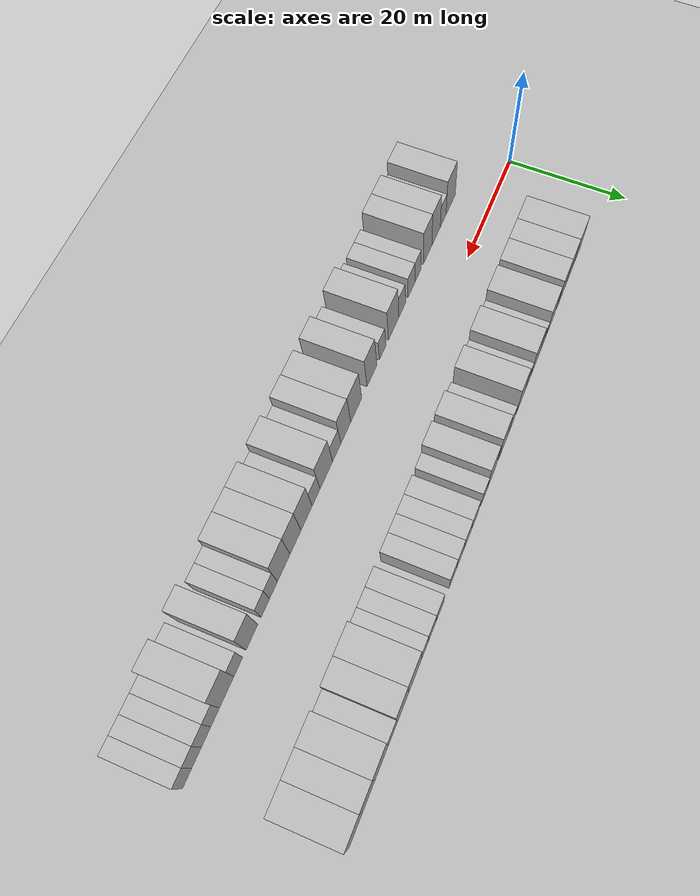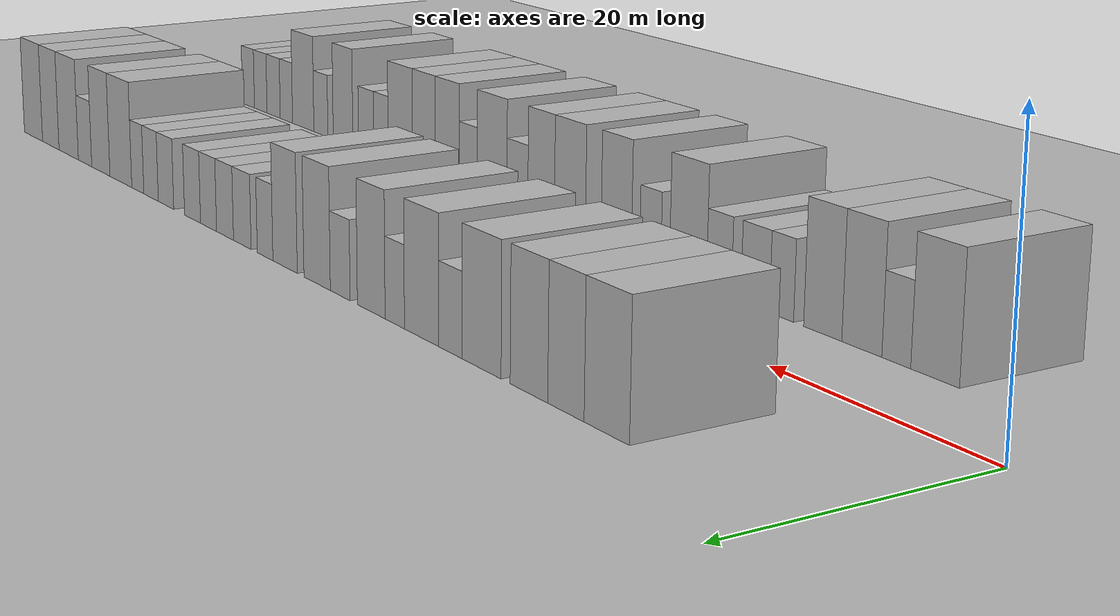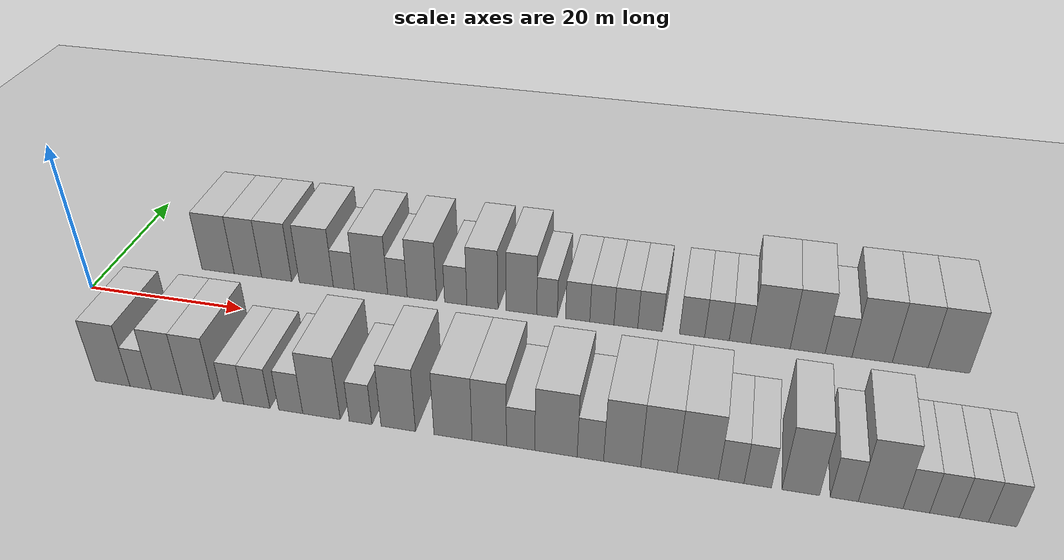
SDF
<sdf version="1.6">
 <world name="default">
  <include><name>ground_plane_1</name><uri>model://HANNAS_ground_plane</uri></include>
  <include>
   <name>ground_plane_2</name>
   <uri>model://HANNAS_ground_plane</uri>
   <pose>100 0 0  0 0 0</pose>
  </include>
  <model name="building_1">
   <static>1</static>
   <pose>14.1911 11.0000 0 0.000000 0.000000 1.570796</pose>
   <link name="link">
    <pose>0 0 4.50 0 0 0</pose>
    <collision name="collision"><geometry><box><size>10.0000 4.3821 9.0000</size></box></geometry></collision>
    <visual name="visual">
     <cast_shadows>0</cast_shadows>
     <geometry><box><size>10.0000 4.3821 9.0000</size></box></geometry>
     <material>
      <script>
       <uri>model://HANNAS_wall/materials/scripts</uri>
       <uri>model://HANNAS_wall/materials/textures</uri>
       <name>vrc/HANNAS_wall</name>
      </script>
     </material>
    </visual>
   </link>
  </model>
  <model name="building_2">
   <static>1</static>
   <pose>18.2319 11.0000 0 0.000000 0.000000 1.570796</pose>
   <link name="link">
    <pose>0 0 4.50 0 0 0</pose>
    <collision name="collision"><geometry><box><size>10.0000 3.6997 9.0000</size></box></geometry></collision>
    <visual name="visual">
     <cast_shadows>0</cast_shadows>
     <geometry><box><size>10.0000 3.6997 9.0000</size></box></geometry>
     <material>
      <script>
       <uri>model://HANNAS_wall/materials/scripts</uri>
       <uri>model://HANNAS_wall/materials/textures</uri>
       <name>vrc/HANNAS_wall</name>
      </script>
     </material>
    </visual>
   </link>
  </model>
  <model name="building_3">
   <static>1</static>
   <pose>22.0924 11.0000 0 0.000000 0.000000 1.570796</pose>
   <link name="link">
    <pose>0 0 4.50 0 0 0</pose>
    <collision name="collision"><geometry><box><size>10.0000 4.0213 9.0000</size></box></geometry></collision>
    <visual name="visual">
     <cast_shadows>0</cast_shadows>
     <geometry><box><size>10.0000 4.0213 9.0000</size></box></geometry>
     <material>
      <script>
       <uri>model://HANNAS_wall/materials/scripts</uri>
       <uri>model://HANNAS_wall/materials/textures</uri>
       <name>vrc/HANNAS_wall</name>
      </script>
     </material>
    </visual>
   </link>
  </model>
  <model name="building_4">
   <static>1</static>
   <pose>27.3407 11.0000 0 0.000000 0.000000 1.570796</pose>
   <link name="link">
    <pose>0 0 4.50 0 0 0</pose>
    <collision name="collision"><geometry><box><size>10.0000 4.4752 9.0000</size></box></geometry></collision>
    <visual name="visual">
     <cast_shadows>0</cast_shadows>
     <geometry><box><size>10.0000 4.4752 9.0000</size></box></geometry>
     <material>
      <script>
       <uri>model://HANNAS_wall/materials/scripts</uri>
       <uri>model://HANNAS_wall/materials/textures</uri>
       <name>vrc/HANNAS_wall</name>
      </script>
     </material>
    </visual>
   </link>
  </model>
  <model name="building_5">
   <static>1</static>
   <pose>30.9566 11.0000 0 0.000000 0.000000 1.570796</pose>
   <link name="link">
    <pose>0 0 3.00 0 0 0</pose>
    <collision name="collision"><geometry><box><size>10.0000 2.7566 6.0000</size></box></geometry></collision>
    <visual name="visual">
     <cast_shadows>0</cast_shadows>
     <geometry><box><size>10.0000 2.7566 6.0000</size></box></geometry>
     <material>
      <script>
       <uri>model://HANNAS_wall/materials/scripts</uri>
       <uri>model://HANNAS_wall/materials/textures</uri>
       <name>vrc/HANNAS_wall</name>
      </script>
     </material>
    </visual>
   </link>
  </model>
  <model name="building_6">
   <static>1</static>
   <pose>34.4782 11.0000 0 0.000000 0.000000 1.570796</pose>
   <link name="link">
    <pose>0 0 4.50 0 0 0</pose>
    <collision name="collision"><geometry><box><size>10.0000 4.2865 9.0000</size></box></geometry></collision>
    <visual name="visual">
     <cast_shadows>0</cast_shadows>
     <geometry><box><size>10.0000 4.2865 9.0000</size></box></geometry>
     <material>
      <script>
       <uri>model://HANNAS_wall/materials/scripts</uri>
       <uri>model://HANNAS_wall/materials/textures</uri>
       <name>vrc/HANNAS_wall</name>
      </script>
     </material>
    </visual>
   </link>
  </model>
  <model name="building_7">
   <static>1</static>
   <pose>37.8743 11.0000 0 0.000000 0.000000 1.570796</pose>
   <link name="link">
    <pose>0 0 3.00 0 0 0</pose>
    <collision name="collision"><geometry><box><size>10.0000 2.5058 6.0000</size></box></geometry></collision>
    <visual name="visual">
     <cast_shadows>0</cast_shadows>
     <geometry><box><size>10.0000 2.5058 6.0000</size></box></geometry>
     <material>
      <script>
       <uri>model://HANNAS_wall/materials/scripts</uri>
       <uri>model://HANNAS_wall/materials/textures</uri>
       <name>vrc/HANNAS_wall</name>
      </script>
     </material>
    </visual>
   </link>
  </model>
  <model name="building_8">
   <static>1</static>
   <pose>40.9944 11.0000 0 0.000000 0.000000 1.570796</pose>
   <link name="link">
    <pose>0 0 4.50 0 0 0</pose>
    <collision name="collision"><geometry><box><size>10.0000 3.7344 9.0000</size></box></geometry></collision>
    <visual name="visual">
     <cast_shadows>0</cast_shadows>
     <geometry><box><size>10.0000 3.7344 9.0000</size></box></geometry>
     <material>
      <script>
       <uri>model://HANNAS_wall/materials/scripts</uri>
       <uri>model://HANNAS_wall/materials/textures</uri>
       <name>vrc/HANNAS_wall</name>
      </script>
     </material>
    </visual>
   </link>
  </model>
  <model name="building_9">
   <static>1</static>
   <pose>45.2568 11.0000 0 0.000000 0.000000 1.570796</pose>
   <link name="link">
    <pose>0 0 3.00 0 0 0</pose>
    <collision name="collision"><geometry><box><size>10.0000 2.7903 6.0000</size></box></geometry></collision>
    <visual name="visual">
     <cast_shadows>0</cast_shadows>
     <geometry><box><size>10.0000 2.7903 6.0000</size></box></geometry>
     <material>
      <script>
       <uri>model://HANNAS_wall/materials/scripts</uri>
       <uri>model://HANNAS_wall/materials/textures</uri>
       <name>vrc/HANNAS_wall</name>
      </script>
     </material>
    </visual>
   </link>
  </model>
  <model name="building_10">
   <static>1</static>
   <pose>48.5802 11.0000 0 0.000000 0.000000 1.570796</pose>
   <link name="link">
    <pose>0 0 4.50 0 0 0</pose>
    <collision name="collision"><geometry><box><size>10.0000 3.8563 9.0000</size></box></geometry></collision>
    <visual name="visual">
     <cast_shadows>0</cast_shadows>
     <geometry><box><size>10.0000 3.8563 9.0000</size></box></geometry>
     <material>
      <script>
       <uri>model://HANNAS_wall/materials/scripts</uri>
       <uri>model://HANNAS_wall/materials/textures</uri>
       <name>vrc/HANNAS_wall</name>
      </script>
     </material>
    </visual>
   </link>
  </model>
  <model name="building_11">
   <static>1</static>
   <pose>53.3890 11.0000 0 0.000000 0.000000 1.570796</pose>
   <link name="link">
    <pose>0 0 4.50 0 0 0</pose>
    <collision name="collision"><geometry><box><size>10.0000 3.7614 9.0000</size></box></geometry></collision>
    <visual name="visual">
     <cast_shadows>0</cast_shadows>
     <geometry><box><size>10.0000 3.7614 9.0000</size></box></geometry>
     <material>
      <script>
       <uri>model://HANNAS_wall/materials/scripts</uri>
       <uri>model://HANNAS_wall/materials/textures</uri>
       <name>vrc/HANNAS_wall</name>
      </script>
     </material>
    </visual>
   </link>
  </model>
  <model name="building_12">
   <static>1</static>
   <pose>56.5151 11.0000 0 0.000000 0.000000 1.570796</pose>
   <link name="link">
    <pose>0 0 3.00 0 0 0</pose>
    <collision name="collision"><geometry><box><size>10.0000 2.4908 6.0000</size></box></geometry></collision>
    <visual name="visual">
     <cast_shadows>0</cast_shadows>
     <geometry><box><size>10.0000 2.4908 6.0000</size></box></geometry>
     <material>
      <script>
       <uri>model://HANNAS_wall/materials/scripts</uri>
       <uri>model://HANNAS_wall/materials/textures</uri>
       <name>vrc/HANNAS_wall</name>
      </script>
     </material>
    </visual>
   </link>
  </model>
  <model name="building_13">
   <static>1</static>
   <pose>60.2191 11.0000 0 0.000000 0.000000 1.570796</pose>
   <link name="link">
    <pose>0 0 3.00 0 0 0</pose>
    <collision name="collision"><geometry><box><size>10.0000 2.9172 6.0000</size></box></geometry></collision>
    <visual name="visual">
     <cast_shadows>0</cast_shadows>
     <geometry><box><size>10.0000 2.9172 6.0000</size></box></geometry>
     <material>
      <script>
       <uri>model://HANNAS_wall/materials/scripts</uri>
       <uri>model://HANNAS_wall/materials/textures</uri>
       <name>vrc/HANNAS_wall</name>
      </script>
     </material>
    </visual>
   </link>
  </model>
  <model name="building_14">
   <static>1</static>
   <pose>63.1198 11.0000 0 0.000000 0.000000 1.570796</pose>
   <link name="link">
    <pose>0 0 3.00 0 0 0</pose>
    <collision name="collision"><geometry><box><size>10.0000 2.8842 6.0000</size></box></geometry></collision>
    <visual name="visual">
     <cast_shadows>0</cast_shadows>
     <geometry><box><size>10.0000 2.8842 6.0000</size></box></geometry>
     <material>
      <script>
       <uri>model://HANNAS_wall/materials/scripts</uri>
       <uri>model://HANNAS_wall/materials/textures</uri>
       <name>vrc/HANNAS_wall</name>
      </script>
     </material>
    </visual>
   </link>
  </model>
  <model name="building_15">
   <static>1</static>
   <pose>65.9718 11.0000 0 0.000000 0.000000 1.570796</pose>
   <link name="link">
    <pose>0 0 3.00 0 0 0</pose>
    <collision name="collision"><geometry><box><size>10.0000 2.8198 6.0000</size></box></geometry></collision>
    <visual name="visual">
     <cast_shadows>0</cast_shadows>
     <geometry><box><size>10.0000 2.8198 6.0000</size></box></geometry>
     <material>
      <script>
       <uri>model://HANNAS_wall/materials/scripts</uri>
       <uri>model://HANNAS_wall/materials/textures</uri>
       <name>vrc/HANNAS_wall</name>
      </script>
     </material>
    </visual>
   </link>
  </model>
  <model name="building_16">
   <static>1</static>
   <pose>68.8249 11.0000 0 0.000000 0.000000 1.570796</pose>
   <link name="link">
    <pose>0 0 3.00 0 0 0</pose>
    <collision name="collision"><geometry><box><size>10.0000 2.8863 6.0000</size></box></geometry></collision>
    <visual name="visual">
     <cast_shadows>0</cast_shadows>
     <geometry><box><size>10.0000 2.8863 6.0000</size></box></geometry>
     <material>
      <script>
       <uri>model://HANNAS_wall/materials/scripts</uri>
       <uri>model://HANNAS_wall/materials/textures</uri>
       <name>vrc/HANNAS_wall</name>
      </script>
     </material>
    </visual>
   </link>
  </model>
  <model name="building_17">
   <static>1</static>
   <pose>73.7291 11.0000 0 0.000000 0.000000 1.570796</pose>
   <link name="link">
    <pose>0 0 3.00 0 0 0</pose>
    <collision name="collision"><geometry><box><size>10.0000 2.9221 6.0000</size></box></geometry></collision>
    <visual name="visual">
     <cast_shadows>0</cast_shadows>
     <geometry><box><size>10.0000 2.9221 6.0000</size></box></geometry>
     <material>
      <script>
       <uri>model://HANNAS_wall/materials/scripts</uri>
       <uri>model://HANNAS_wall/materials/textures</uri>
       <name>vrc/HANNAS_wall</name>
      </script>
     </material>
    </visual>
   </link>
  </model>
  <model name="building_18">
   <static>1</static>
   <pose>76.6007 11.0000 0 0.000000 0.000000 1.570796</pose>
   <link name="link">
    <pose>0 0 3.00 0 0 0</pose>
    <collision name="collision"><geometry><box><size>10.0000 2.8211 6.0000</size></box></geometry></collision>
    <visual name="visual">
     <cast_shadows>0</cast_shadows>
     <geometry><box><size>10.0000 2.8211 6.0000</size></box></geometry>
     <material>
      <script>
       <uri>model://HANNAS_wall/materials/scripts</uri>
       <uri>model://HANNAS_wall/materials/textures</uri>
       <name>vrc/HANNAS_wall</name>
      </script>
     </material>
    </visual>
   </link>
  </model>
  <model name="building_19">
   <static>1</static>
   <pose>79.2155 11.0000 0 0.000000 0.000000 1.570796</pose>
   <link name="link">
    <pose>0 0 3.00 0 0 0</pose>
    <collision name="collision"><geometry><box><size>10.0000 2.4084 6.0000</size></box></geometry></collision>
    <visual name="visual">
     <cast_shadows>0</cast_shadows>
     <geometry><box><size>10.0000 2.4084 6.0000</size></box></geometry>
     <material>
      <script>
       <uri>model://HANNAS_wall/materials/scripts</uri>
       <uri>model://HANNAS_wall/materials/textures</uri>
       <name>vrc/HANNAS_wall</name>
      </script>
     </material>
    </visual>
   </link>
  </model>
  <model name="building_20">
   <static>1</static>
   <pose>82.6691 11.0000 0 0.000000 0.000000 1.570796</pose>
   <link name="link">
    <pose>0 0 4.50 0 0 0</pose>
    <collision name="collision"><geometry><box><size>10.0000 4.4989 9.0000</size></box></geometry></collision>
    <visual name="visual">
     <cast_shadows>0</cast_shadows>
     <geometry><box><size>10.0000 4.4989 9.0000</size></box></geometry>
     <material>
      <script>
       <uri>model://HANNAS_wall/materials/scripts</uri>
       <uri>model://HANNAS_wall/materials/textures</uri>
       <name>vrc/HANNAS_wall</name>
      </script>
     </material>
    </visual>
   </link>
  </model>
  <model name="building_21">
   <static>1</static>
   <pose>86.8722 11.0000 0 0.000000 0.000000 1.570796</pose>
   <link name="link">
    <pose>0 0 4.50 0 0 0</pose>
    <collision name="collision"><geometry><box><size>10.0000 3.9072 9.0000</size></box></geometry></collision>
    <visual name="visual">
     <cast_shadows>0</cast_shadows>
     <geometry><box><size>10.0000 3.9072 9.0000</size></box></geometry>
     <material>
      <script>
       <uri>model://HANNAS_wall/materials/scripts</uri>
       <uri>model://HANNAS_wall/materials/textures</uri>
       <name>vrc/HANNAS_wall</name>
      </script>
     </material>
    </visual>
   </link>
  </model>
  <model name="building_22">
   <static>1</static>
   <pose>90.3051 11.0000 0 0.000000 0.000000 1.570796</pose>
   <link name="link">
    <pose>0 0 3.00 0 0 0</pose>
    <collision name="collision"><geometry><box><size>10.0000 2.9587 6.0000</size></box></geometry></collision>
    <visual name="visual">
     <cast_shadows>0</cast_shadows>
     <geometry><box><size>10.0000 2.9587 6.0000</size></box></geometry>
     <material>
      <script>
       <uri>model://HANNAS_wall/materials/scripts</uri>
       <uri>model://HANNAS_wall/materials/textures</uri>
       <name>vrc/HANNAS_wall</name>
      </script>
     </material>
    </visual>
   </link>
  </model>
  <model name="building_23">
   <static>1</static>
   <pose>93.9879 11.0000 0 0.000000 0.000000 1.570796</pose>
   <link name="link">
    <pose>0 0 4.50 0 0 0</pose>
    <collision name="collision"><geometry><box><size>10.0000 4.4069 9.0000</size></box></geometry></collision>
    <visual name="visual">
     <cast_shadows>0</cast_shadows>
     <geometry><box><size>10.0000 4.4069 9.0000</size></box></geometry>
     <material>
      <script>
       <uri>model://HANNAS_wall/materials/scripts</uri>
       <uri>model://HANNAS_wall/materials/textures</uri>
       <name>vrc/HANNAS_wall</name>
      </script>
     </material>
    </visual>
   </link>
  </model>
  <model name="building_24">
   <static>1</static>
   <pose>98.1364 11.0000 0 0.000000 0.000000 1.570796</pose>
   <link name="link">
    <pose>0 0 4.50 0 0 0</pose>
    <collision name="collision"><geometry><box><size>10.0000 3.8901 9.0000</size></box></geometry></collision>
    <visual name="visual">
     <cast_shadows>0</cast_shadows>
     <geometry><box><size>10.0000 3.8901 9.0000</size></box></geometry>
     <material>
      <script>
       <uri>model://HANNAS_wall/materials/scripts</uri>
       <uri>model://HANNAS_wall/materials/textures</uri>
       <name>vrc/HANNAS_wall</name>
      </script>
     </material>
    </visual>
   </link>
  </model>
  <model name="building_25">
   <static>1</static>
   <pose>102.2956 11.0000 0 0.000000 0.000000 1.570796</pose>
   <link name="link">
    <pose>0 0 4.50 0 0 0</pose>
    <collision name="collision"><geometry><box><size>10.0000 4.4283 9.0000</size></box></geometry></collision>
    <visual name="visual">
     <cast_shadows>0</cast_shadows>
     <geometry><box><size>10.0000 4.4283 9.0000</size></box></geometry>
     <material>
      <script>
       <uri>model://HANNAS_wall/materials/scripts</uri>
       <uri>model://HANNAS_wall/materials/textures</uri>
       <name>vrc/HANNAS_wall</name>
      </script>
     </material>
    </visual>
   </link>
  </model>
  <model name="building_53">
   <static>1</static>
   <pose>12.0862 -11.0000 0 0.000000 0.000000 1.570796</pose>
   <link name="link">
    <pose>0 0 4.50 0 0 0</pose>
    <collision name="collision"><geometry><box><size>10.0000 4.1724 9.0000</size></box></geometry></collision>
    <visual name="visual">
     <cast_shadows>0</cast_shadows>
     <geometry><box><size>10.0000 4.1724 9.0000</size></box></geometry>
     <material>
      <script>
       <uri>model://HANNAS_wall/materials/scripts</uri>
       <uri>model://HANNAS_wall/materials/textures</uri>
       <name>vrc/HANNAS_wall</name>
      </script>
     </material>
    </visual>
   </link>
  </model>
  <model name="building_54">
   <static>1</static>
   <pose>15.4557 -11.0000 0 0.000000 0.000000 1.570796</pose>
   <link name="link">
    <pose>0 0 3.00 0 0 0</pose>
    <collision name="collision"><geometry><box><size>10.0000 2.5665 6.0000</size></box></geometry></collision>
    <visual name="visual">
     <cast_shadows>0</cast_shadows>
     <geometry><box><size>10.0000 2.5665 6.0000</size></box></geometry>
     <material>
      <script>
       <uri>model://HANNAS_wall/materials/scripts</uri>
       <uri>model://HANNAS_wall/materials/textures</uri>
       <name>vrc/HANNAS_wall</name>
      </script>
     </material>
    </visual>
   </link>
  </model>
  <model name="building_55">
   <static>1</static>
   <pose>18.5907 -11.0000 0 0.000000 0.000000 1.570796</pose>
   <link name="link">
    <pose>0 0 4.50 0 0 0</pose>
    <collision name="collision"><geometry><box><size>10.0000 3.7034 9.0000</size></box></geometry></collision>
    <visual name="visual">
     <cast_shadows>0</cast_shadows>
     <geometry><box><size>10.0000 3.7034 9.0000</size></box></geometry>
     <material>
      <script>
       <uri>model://HANNAS_wall/materials/scripts</uri>
       <uri>model://HANNAS_wall/materials/textures</uri>
       <name>vrc/HANNAS_wall</name>
      </script>
     </material>
    </visual>
   </link>
  </model>
  <model name="building_56">
   <static>1</static>
   <pose>22.2863 -11.0000 0 0.000000 0.000000 1.570796</pose>
   <link name="link">
    <pose>0 0 4.50 0 0 0</pose>
    <collision name="collision"><geometry><box><size>10.0000 3.6878 9.0000</size></box></geometry></collision>
    <visual name="visual">
     <cast_shadows>0</cast_shadows>
     <geometry><box><size>10.0000 3.6878 9.0000</size></box></geometry>
     <material>
      <script>
       <uri>model://HANNAS_wall/materials/scripts</uri>
       <uri>model://HANNAS_wall/materials/textures</uri>
       <name>vrc/HANNAS_wall</name>
      </script>
     </material>
    </visual>
   </link>
  </model>
  <model name="building_57">
   <static>1</static>
   <pose>26.3542 -11.0000 0 0.000000 0.000000 1.570796</pose>
   <link name="link">
    <pose>0 0 3.00 0 0 0</pose>
    <collision name="collision"><geometry><box><size>10.0000 2.4482 6.0000</size></box></geometry></collision>
    <visual name="visual">
     <cast_shadows>0</cast_shadows>
     <geometry><box><size>10.0000 2.4482 6.0000</size></box></geometry>
     <material>
      <script>
       <uri>model://HANNAS_wall/materials/scripts</uri>
       <uri>model://HANNAS_wall/materials/textures</uri>
       <name>vrc/HANNAS_wall</name>
      </script>
     </material>
    </visual>
   </link>
  </model>
  <model name="building_58">
   <static>1</static>
   <pose>29.0768 -11.0000 0 0.000000 0.000000 1.570796</pose>
   <link name="link">
    <pose>0 0 3.00 0 0 0</pose>
    <collision name="collision"><geometry><box><size>10.0000 2.9970 6.0000</size></box></geometry></collision>
    <visual name="visual">
     <cast_shadows>0</cast_shadows>
     <geometry><box><size>10.0000 2.9970 6.0000</size></box></geometry>
     <material>
      <script>
       <uri>model://HANNAS_wall/materials/scripts</uri>
       <uri>model://HANNAS_wall/materials/textures</uri>
       <name>vrc/HANNAS_wall</name>
      </script>
     </material>
    </visual>
   </link>
  </model>
  <model name="building_59">
   <static>1</static>
   <pose>32.9451 -11.0000 0 0.000000 0.000000 1.570796</pose>
   <link name="link">
    <pose>0 0 3.00 0 0 0</pose>
    <collision name="collision"><geometry><box><size>10.0000 2.7396 6.0000</size></box></geometry></collision>
    <visual name="visual">
     <cast_shadows>0</cast_shadows>
     <geometry><box><size>10.0000 2.7396 6.0000</size></box></geometry>
     <material>
      <script>
       <uri>model://HANNAS_wall/materials/scripts</uri>
       <uri>model://HANNAS_wall/materials/textures</uri>
       <name>vrc/HANNAS_wall</name>
      </script>
     </material>
    </visual>
   </link>
  </model>
  <model name="building_60">
   <static>1</static>
   <pose>36.4174 -11.0000 0 0.000000 0.000000 1.570796</pose>
   <link name="link">
    <pose>0 0 4.50 0 0 0</pose>
    <collision name="collision"><geometry><box><size>10.0000 4.2051 9.0000</size></box></geometry></collision>
    <visual name="visual">
     <cast_shadows>0</cast_shadows>
     <geometry><box><size>10.0000 4.2051 9.0000</size></box></geometry>
     <material>
      <script>
       <uri>model://HANNAS_wall/materials/scripts</uri>
       <uri>model://HANNAS_wall/materials/textures</uri>
       <name>vrc/HANNAS_wall</name>
      </script>
     </material>
    </visual>
   </link>
  </model>
  <model name="building_61">
   <static>1</static>
   <pose>40.7813 -11.0000 0 0.000000 0.000000 1.570796</pose>
   <link name="link">
    <pose>0 0 3.00 0 0 0</pose>
    <collision name="collision"><geometry><box><size>10.0000 2.5228 6.0000</size></box></geometry></collision>
    <visual name="visual">
     <cast_shadows>0</cast_shadows>
     <geometry><box><size>10.0000 2.5228 6.0000</size></box></geometry>
     <material>
      <script>
       <uri>model://HANNAS_wall/materials/scripts</uri>
       <uri>model://HANNAS_wall/materials/textures</uri>
       <name>vrc/HANNAS_wall</name>
      </script>
     </material>
    </visual>
   </link>
  </model>
  <model name="building_62">
   <static>1</static>
   <pose>44.9284 -11.0000 0 0.000000 0.000000 1.570796</pose>
   <link name="link">
    <pose>0 0 4.50 0 0 0</pose>
    <collision name="collision"><geometry><box><size>10.0000 3.7713 9.0000</size></box></geometry></collision>
    <visual name="visual">
     <cast_shadows>0</cast_shadows>
     <geometry><box><size>10.0000 3.7713 9.0000</size></box></geometry>
     <material>
      <script>
       <uri>model://HANNAS_wall/materials/scripts</uri>
       <uri>model://HANNAS_wall/materials/textures</uri>
       <name>vrc/HANNAS_wall</name>
      </script>
     </material>
    </visual>
   </link>
  </model>
  <model name="building_63">
   <static>1</static>
   <pose>50.8585 -11.0000 0 0.000000 0.000000 1.570796</pose>
   <link name="link">
    <pose>0 0 4.50 0 0 0</pose>
    <collision name="collision"><geometry><box><size>10.0000 4.0890 9.0000</size></box></geometry></collision>
    <visual name="visual">
     <cast_shadows>0</cast_shadows>
     <geometry><box><size>10.0000 4.0890 9.0000</size></box></geometry>
     <material>
      <script>
       <uri>model://HANNAS_wall/materials/scripts</uri>
       <uri>model://HANNAS_wall/materials/textures</uri>
       <name>vrc/HANNAS_wall</name>
      </script>
     </material>
    </visual>
   </link>
  </model>
  <model name="building_64">
   <static>1</static>
   <pose>54.7216 -11.0000 0 0.000000 0.000000 1.570796</pose>
   <link name="link">
    <pose>0 0 4.50 0 0 0</pose>
    <collision name="collision"><geometry><box><size>10.0000 3.6373 9.0000</size></box></geometry></collision>
    <visual name="visual">
     <cast_shadows>0</cast_shadows>
     <geometry><box><size>10.0000 3.6373 9.0000</size></box></geometry>
     <material>
      <script>
       <uri>model://HANNAS_wall/materials/scripts</uri>
       <uri>model://HANNAS_wall/materials/textures</uri>
       <name>vrc/HANNAS_wall</name>
      </script>
     </material>
    </visual>
   </link>
  </model>
  <model name="building_65">
   <static>1</static>
   <pose>58.0206 -11.0000 0 0.000000 0.000000 1.570796</pose>
   <link name="link">
    <pose>0 0 3.00 0 0 0</pose>
    <collision name="collision"><geometry><box><size>10.0000 2.9605 6.0000</size></box></geometry></collision>
    <visual name="visual">
     <cast_shadows>0</cast_shadows>
     <geometry><box><size>10.0000 2.9605 6.0000</size></box></geometry>
     <material>
      <script>
       <uri>model://HANNAS_wall/materials/scripts</uri>
       <uri>model://HANNAS_wall/materials/textures</uri>
       <name>vrc/HANNAS_wall</name>
      </script>
     </material>
    </visual>
   </link>
  </model>
  <model name="building_66">
   <static>1</static>
   <pose>61.7003 -11.0000 0 0.000000 0.000000 1.570796</pose>
   <link name="link">
    <pose>0 0 4.50 0 0 0</pose>
    <collision name="collision"><geometry><box><size>10.0000 4.3989 9.0000</size></box></geometry></collision>
    <visual name="visual">
     <cast_shadows>0</cast_shadows>
     <geometry><box><size>10.0000 4.3989 9.0000</size></box></geometry>
     <material>
      <script>
       <uri>model://HANNAS_wall/materials/scripts</uri>
       <uri>model://HANNAS_wall/materials/textures</uri>
       <name>vrc/HANNAS_wall</name>
      </script>
     </material>
    </visual>
   </link>
  </model>
  <model name="building_67">
   <static>1</static>
   <pose>65.2532 -11.0000 0 0.000000 0.000000 1.570796</pose>
   <link name="link">
    <pose>0 0 3.00 0 0 0</pose>
    <collision name="collision"><geometry><box><size>10.0000 2.7070 6.0000</size></box></geometry></collision>
    <visual name="visual">
     <cast_shadows>0</cast_shadows>
     <geometry><box><size>10.0000 2.7070 6.0000</size></box></geometry>
     <material>
      <script>
       <uri>model://HANNAS_wall/materials/scripts</uri>
       <uri>model://HANNAS_wall/materials/textures</uri>
       <name>vrc/HANNAS_wall</name>
      </script>
     </material>
    </visual>
   </link>
  </model>
  <model name="building_68">
   <static>1</static>
   <pose>68.4910 -11.0000 0 0.000000 0.000000 1.570796</pose>
   <link name="link">
    <pose>0 0 4.50 0 0 0</pose>
    <collision name="collision"><geometry><box><size>10.0000 3.7685 9.0000</size></box></geometry></collision>
    <visual name="visual">
     <cast_shadows>0</cast_shadows>
     <geometry><box><size>10.0000 3.7685 9.0000</size></box></geometry>
     <material>
      <script>
       <uri>model://HANNAS_wall/materials/scripts</uri>
       <uri>model://HANNAS_wall/materials/textures</uri>
       <name>vrc/HANNAS_wall</name>
      </script>
     </material>
    </visual>
   </link>
  </model>
  <model name="building_69">
   <static>1</static>
   <pose>72.1977 -11.0000 0 0.000000 0.000000 1.570796</pose>
   <link name="link">
    <pose>0 0 4.50 0 0 0</pose>
    <collision name="collision"><geometry><box><size>10.0000 3.6451 9.0000</size></box></geometry></collision>
    <visual name="visual">
     <cast_shadows>0</cast_shadows>
     <geometry><box><size>10.0000 3.6451 9.0000</size></box></geometry>
     <material>
      <script>
       <uri>model://HANNAS_wall/materials/scripts</uri>
       <uri>model://HANNAS_wall/materials/textures</uri>
       <name>vrc/HANNAS_wall</name>
      </script>
     </material>
    </visual>
   </link>
  </model>
  <model name="building_70">
   <static>1</static>
   <pose>76.0608 -11.0000 0 0.000000 0.000000 1.570796</pose>
   <link name="link">
    <pose>0 0 4.50 0 0 0</pose>
    <collision name="collision"><geometry><box><size>10.0000 4.0811 9.0000</size></box></geometry></collision>
    <visual name="visual">
     <cast_shadows>0</cast_shadows>
     <geometry><box><size>10.0000 4.0811 9.0000</size></box></geometry>
     <material>
      <script>
       <uri>model://HANNAS_wall/materials/scripts</uri>
       <uri>model://HANNAS_wall/materials/textures</uri>
       <name>vrc/HANNAS_wall</name>
      </script>
     </material>
    </visual>
   </link>
  </model>
  <model name="building_71">
   <static>1</static>
   <pose>79.3522 -11.0000 0 0.000000 0.000000 1.570796</pose>
   <link name="link">
    <pose>0 0 3.00 0 0 0</pose>
    <collision name="collision"><geometry><box><size>10.0000 2.5017 6.0000</size></box></geometry></collision>
    <visual name="visual">
     <cast_shadows>0</cast_shadows>
     <geometry><box><size>10.0000 2.5017 6.0000</size></box></geometry>
     <material>
      <script>
       <uri>model://HANNAS_wall/materials/scripts</uri>
       <uri>model://HANNAS_wall/materials/textures</uri>
       <name>vrc/HANNAS_wall</name>
      </script>
     </material>
    </visual>
   </link>
  </model>
  <model name="building_72">
   <static>1</static>
   <pose>81.9416 -11.0000 0 0.000000 0.000000 1.570796</pose>
   <link name="link">
    <pose>0 0 3.00 0 0 0</pose>
    <collision name="collision"><geometry><box><size>10.0000 2.6772 6.0000</size></box></geometry></collision>
    <visual name="visual">
     <cast_shadows>0</cast_shadows>
     <geometry><box><size>10.0000 2.6772 6.0000</size></box></geometry>
     <material>
      <script>
       <uri>model://HANNAS_wall/materials/scripts</uri>
       <uri>model://HANNAS_wall/materials/textures</uri>
       <name>vrc/HANNAS_wall</name>
      </script>
     </material>
    </visual>
   </link>
  </model>
  <model name="building_73">
   <static>1</static>
   <pose>86.0815 -11.0000 0 0.000000 0.000000 1.570796</pose>
   <link name="link">
    <pose>0 0 4.50 0 0 0</pose>
    <collision name="collision"><geometry><box><size>10.0000 3.6025 9.0000</size></box></geometry></collision>
    <visual name="visual">
     <cast_shadows>0</cast_shadows>
     <geometry><box><size>10.0000 3.6025 9.0000</size></box></geometry>
     <material>
      <script>
       <uri>model://HANNAS_wall/materials/scripts</uri>
       <uri>model://HANNAS_wall/materials/textures</uri>
       <name>vrc/HANNAS_wall</name>
      </script>
     </material>
    </visual>
   </link>
  </model>
  <model name="building_74">
   <static>1</static>
   <pose>90.2096 -11.0000 0 0.000000 0.000000 1.570796</pose>
   <link name="link">
    <pose>0 0 3.00 0 0 0</pose>
    <collision name="collision"><geometry><box><size>10.0000 2.6537 6.0000</size></box></geometry></collision>
    <visual name="visual">
     <cast_shadows>0</cast_shadows>
     <geometry><box><size>10.0000 2.6537 6.0000</size></box></geometry>
     <material>
      <script>
       <uri>model://HANNAS_wall/materials/scripts</uri>
       <uri>model://HANNAS_wall/materials/textures</uri>
       <name>vrc/HANNAS_wall</name>
      </script>
     </material>
    </visual>
   </link>
  </model>
  <model name="building_75">
   <static>1</static>
   <pose>93.6198 -11.0000 0 0.000000 0.000000 1.570796</pose>
   <link name="link">
    <pose>0 0 4.50 0 0 0</pose>
    <collision name="collision"><geometry><box><size>10.0000 4.1667 9.0000</size></box></geometry></collision>
    <visual name="visual">
     <cast_shadows>0</cast_shadows>
     <geometry><box><size>10.0000 4.1667 9.0000</size></box></geometry>
     <material>
      <script>
       <uri>model://HANNAS_wall/materials/scripts</uri>
       <uri>model://HANNAS_wall/materials/textures</uri>
       <name>vrc/HANNAS_wall</name>
      </script>
     </material>
    </visual>
   </link>
  </model>
  <model name="building_76">
   <static>1</static>
   <pose>96.9354 -11.0000 0 0.000000 0.000000 1.570796</pose>
   <link name="link">
    <pose>0 0 3.00 0 0 0</pose>
    <collision name="collision"><geometry><box><size>10.0000 2.4645 6.0000</size></box></geometry></collision>
    <visual name="visual">
     <cast_shadows>0</cast_shadows>
     <geometry><box><size>10.0000 2.4645 6.0000</size></box></geometry>
     <material>
      <script>
       <uri>model://HANNAS_wall/materials/scripts</uri>
       <uri>model://HANNAS_wall/materials/textures</uri>
       <name>vrc/HANNAS_wall</name>
      </script>
     </material>
    </visual>
   </link>
  </model>
  <model name="building_77">
   <static>1</static>
   <pose>99.5156 -11.0000 0 0.000000 0.000000 1.570796</pose>
   <link name="link">
    <pose>0 0 3.00 0 0 0</pose>
    <collision name="collision"><geometry><box><size>10.0000 2.6960 6.0000</size></box></geometry></collision>
    <visual name="visual">
     <cast_shadows>0</cast_shadows>
     <geometry><box><size>10.0000 2.6960 6.0000</size></box></geometry>
     <material>
      <script>
       <uri>model://HANNAS_wall/materials/scripts</uri>
       <uri>model://HANNAS_wall/materials/textures</uri>
       <name>vrc/HANNAS_wall</name>
      </script>
     </material>
    </visual>
   </link>
  </model>
  <model name="building_78">
   <static>1</static>
   <pose>102.1844 -11.0000 0 0.000000 0.000000 1.570796</pose>
   <link name="link">
    <pose>0 0 3.00 0 0 0</pose>
    <collision name="collision"><geometry><box><size>10.0000 2.6415 6.0000</size></box></geometry></collision>
    <visual name="visual">
     <cast_shadows>0</cast_shadows>
     <geometry><box><size>10.0000 2.6415 6.0000</size></box></geometry>
     <material>
      <script>
       <uri>model://HANNAS_wall/materials/scripts</uri>
       <uri>model://HANNAS_wall/materials/textures</uri>
       <name>vrc/HANNAS_wall</name>
      </script>
     </material>
    </visual>
   </link>
  </model>
  <model name="building_79">
   <static>1</static>
   <pose>104.7833 -11.0000 0 0.000000 0.000000 1.570796</pose>
   <link name="link">
    <pose>0 0 3.00 0 0 0</pose>
    <collision name="collision"><geometry><box><size>10.0000 2.5563 6.0000</size></box></geometry></collision>
    <visual name="visual">
     <cast_shadows>0</cast_shadows>
     <geometry><box><size>10.0000 2.5563 6.0000</size></box></geometry>
     <material>
      <script>
       <uri>model://HANNAS_wall/materials/scripts</uri>
       <uri>model://HANNAS_wall/materials/textures</uri>
       <name>vrc/HANNAS_wall</name>
      </script>
     </material>
    </visual>
   </link>
  </model>
 </world>
</sdf>
